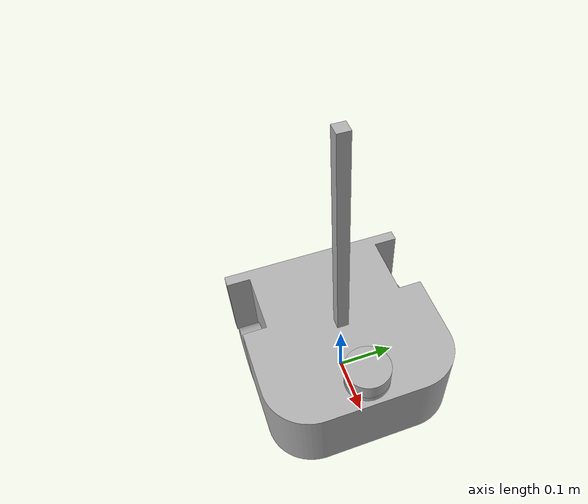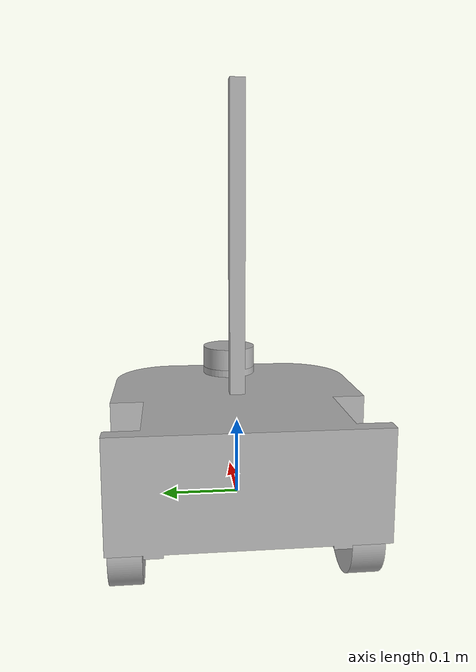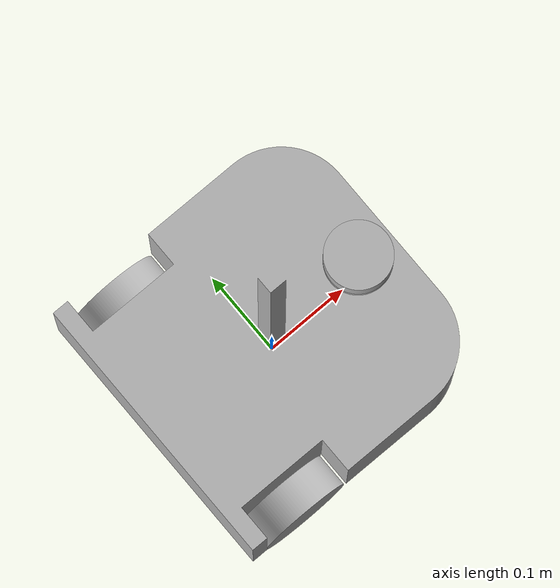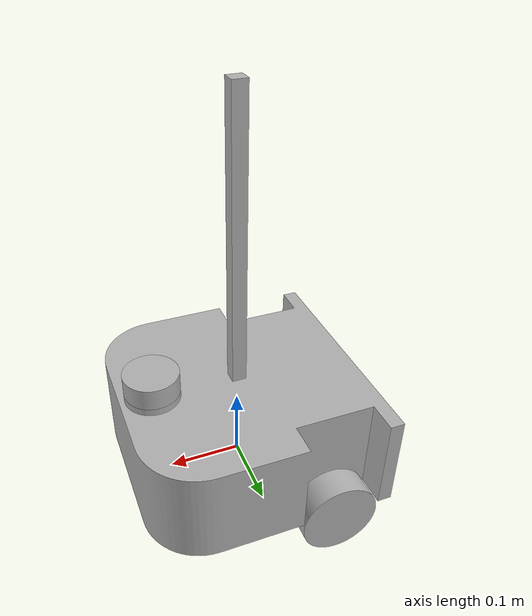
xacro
<?xml version="1.0" ?>
<robot name="uv_bot" xmlns:xacro="http://www.ros.org/wiki/xacro">
<xacro:arg name="use_ros2_control" default="false"/>
<xacro:include filename="$(find uv_bot_description)/urdf/materials.xacro" />
<xacro:if value="$(arg use_ros2_control)">
	<xacro:include filename="$(find uv_bot_description)/urdf/ros2_control.xacro" />
</xacro:if>
<xacro:unless value="$(arg use_ros2_control)">
  <xacro:include filename="$(find uv_bot_description)/urdf/uv_bot.gazebo" />
</xacro:unless>
<link name="base_link">
  <inertial>
    <origin xyz="0.004966691607534806 2.1160911391002487e-05 0.07113633595915826" rpy="0 0 0"/>
    <mass value="1.86185192237103"/>
    <inertia ixx="0.108652" iyy="0.121509" izz="0.171879" ixy="2.1e-05" iyz="1.8e-05" ixz="0.000215"/>
  </inertial>
  <visual>
    <origin xyz="0 0 0" rpy="0 0 0"/>
    <geometry>
      <mesh filename="file://$(find uv_bot_description)/meshes/base_link.stl" scale="0.001 0.001 0.001"/>
    </geometry>
    <material name="silver"/>
  </visual>
  <collision>
    <origin xyz="0 0 0" rpy="0 0 0"/>
    <geometry>
      <mesh filename="file://$(find uv_bot_description)/meshes/base_link.stl" scale="0.001 0.001 0.001"/>
    </geometry>
  </collision>
</link>
<joint name="base_footprint_joint" type="fixed">
    <parent link="base_link"/>"
    <child link="base_footprint"/>
    <origin xyz="0 0 -0.015" rpy="0 0 0"/>
</joint>

<link name="base_footprint">
</link>

<link name="right_wheel_1">
  <inertial>
    <origin xyz="2.9115926243605816e-07 -0.020000000000000004 1.734723475976807e-18" rpy="0 0 0"/>
    <mass value="0.3471249395508931"/>
    <inertia ixx="0.000304" iyy="0.000516" izz="0.000304" ixy="0.0" iyz="0.0" ixz="-0.0"/>
  </inertial>
  <visual>
    <origin xyz="0.088943 0.1221 0.015" rpy="0 0 0"/>
    <geometry>
      <mesh filename="file://$(find uv_bot_description)/meshes/right_wheel_1.stl" scale="0.001 0.001 0.001"/>
    </geometry>
    <material name="silver"/>
  </visual>
  <collision>
    <origin xyz="0.088943 0.1221 0.015" rpy="0 0 0"/>
    <geometry>
      <mesh filename="file://$(find uv_bot_description)/meshes/right_wheel_1.stl" scale="0.001 0.001 0.001"/>
    </geometry>
  </collision>
</link>

<link name="left_wheel_1">
  <inertial>
    <origin xyz="-3.895068451387207e-07 0.01999999999999999 1.734723475976807e-18" rpy="0 0 0"/>
    <mass value="0.3471249395508931"/>
    <inertia ixx="0.000304" iyy="0.000516" izz="0.000304" ixy="0.0" iyz="0.0" ixz="-0.0"/>
  </inertial>
  <visual>
    <origin xyz="0.088663 -0.123 0.015" rpy="0 0 0"/>
    <geometry>
      <mesh filename="file://$(find uv_bot_description)/meshes/left_wheel_1.stl" scale="0.001 0.001 0.001"/>
    </geometry>
    <material name="silver"/>
  </visual>
  <collision>
    <origin xyz="0.088663 -0.123 0.015" rpy="0 0 0"/>
    <geometry>
      <mesh filename="file://$(find uv_bot_description)/meshes/left_wheel_1.stl" scale="0.001 0.001 0.001"/>
    </geometry>
  </collision>
</link>

<link name="lidar_1">
  <inertial>
    <origin xyz="-1.3877787807814457e-17 0.0 0.015000000000000013" rpy="0 0 0"/>
    <mass value="0.1060287520586555"/>
    <inertia ixx="4.5e-05" iyy="4.5e-05" izz="7.5e-05" ixy="-0.0" iyz="0.0" ixz="-0.0"/>
  </inertial>
  <visual>
    <origin xyz="-0.119 -0.0 -0.148" rpy="0 0 0"/>
    <geometry>
      <mesh filename="file://$(find uv_bot_description)/meshes/lidar_1.stl" scale="0.001 0.001 0.001"/>
    </geometry>
    <material name="silver"/>
  </visual>
  <collision>
    <origin xyz="-0.119 -0.0 -0.148" rpy="0 0 0"/>
    <geometry>
      <mesh filename="file://$(find uv_bot_description)/meshes/lidar_1.stl" scale="0.001 0.001 0.001"/>
    </geometry>
  </collision>
</link>

<joint name="Revolute_4" type="continuous">
  <origin xyz="-0.088943 -0.1221 -0.015" rpy="0 0 0"/>
  <parent link="base_link"/>
  <child link="right_wheel_1"/>
  <axis xyz="0.0 1.0 0.0"/>
</joint>

<joint name="Revolute_5" type="continuous">
  <origin xyz="-0.088663 0.123 -0.015" rpy="0 0 0"/>
  <parent link="base_link"/>
  <child link="left_wheel_1"/>
  <axis xyz="0.0 1.0 0.0"/>
</joint>

<joint name="Revolute 7" type="fixed">
  <origin xyz="0.119 0.0 0.148" rpy="0 0 0"/>
  <parent link="base_link"/>
  <child link="lidar_1"/>
</joint>

</robot>

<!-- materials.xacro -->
<robot name="uv_bot" xmlns:xacro="http://www.ros.org/wiki/xacro" >

<material name="silver">
  <color rgba="0.700 0.700 0.700 1.000"/>
</material>

</robot>

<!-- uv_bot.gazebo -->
<robot name="uv_bot" xmlns:xacro="http://www.ros.org/wiki/xacro" >

<xacro:property name="White" value="Gazebo/White" />
<xacro:property name="Black" value="Gazebo/Black" />

<gazebo>
  <plugin name="control" filename="libgazebo_ros_control.so"/>
</gazebo>
<gazebo reference="base_link">
  <material>${White}</material>
  <mu1>0.2</mu1>
  <mu2>0.2</mu2>
  <self_collide>true</self_collide>
  <gravity>true</gravity>
</gazebo>

<gazebo reference="right_wheel_1">
  <material>${Black}</material>
  <mu1>0.2</mu1>
  <mu2>0.2</mu2>
  <self_collide>true</self_collide>
</gazebo>

<gazebo reference="left_wheel_1">
  <material>${Black}</material>
  <mu1>0.2</mu1>
  <mu2>0.2</mu2>
  <self_collide>true</self_collide>
</gazebo>

<gazebo reference="lidar_1">
  <material>${Black}</material>
  <mu1>0.2</mu1>
  <mu2>0.2</mu2>
  <self_collide>true</self_collide>
</gazebo>

<gazebo>
  <plugin name="diff_drive" filename="libgazebo_ros_diff_drive.so">

      <!-- Wheel Information -->
      <left_joint>Revolute_5</left_joint>
      <right_joint>Revolute_4</right_joint>
      <wheel_separation>0.241</wheel_separation>
      <wheel_diameter>0.109</wheel_diameter>

      <!-- Limits -->
      <max_wheel_torque>200</max_wheel_torque>
      <max_wheel_acceleration>10.0</max_wheel_acceleration>

      <!-- Output -->
      <odometry_frame>odom</odometry_frame>
      <robot_base_frame>base_link</robot_base_frame>

      <publish_odom>true</publish_odom>
      <publish_odom_tf>true</publish_odom_tf>
      <publish_wheel_tf>true</publish_wheel_tf>
  </plugin>
</gazebo>

<gazebo reference="lidar_1">
    <sensor name="laser" type="ray">
        <pose> 0 0 0 0 0 0 </pose>
        <visualize>true</visualize>
        <update_rate>10</update_rate>
        <ray>
            <scan>
                <horizontal>
                    <samples>360</samples>
                    <min_angle>-3.14</min_angle>
                    <max_angle>3.14</max_angle>
                </horizontal>
            </scan>
            <range>
                <min>0.3</min>
                <max>12</max>
            </range>
        </ray>
        <plugin name="laser_controller" filename="libgazebo_ros_ray_sensor.so">
            <ros>
                <argument>~/out:=scan</argument>
            </ros>
            <output_type>sensor_msgs/LaserScan</output_type>
            <frame_name>lidar_1</frame_name>
        </plugin>
    </sensor>
</gazebo>

</robot>
